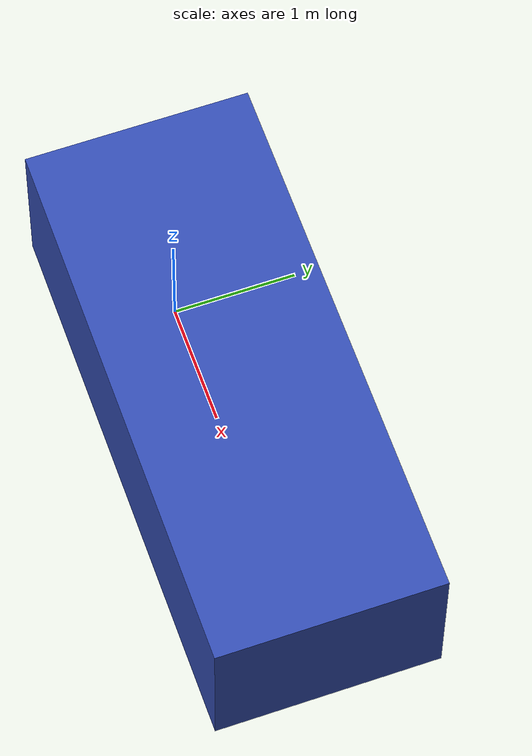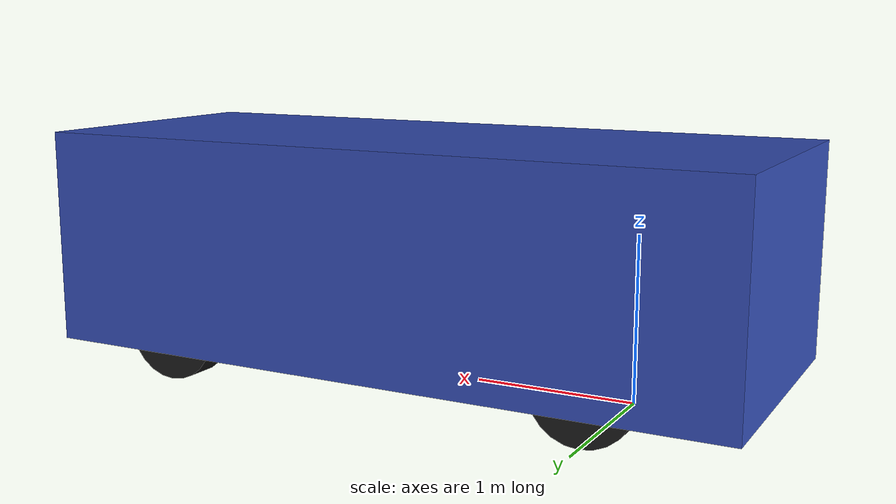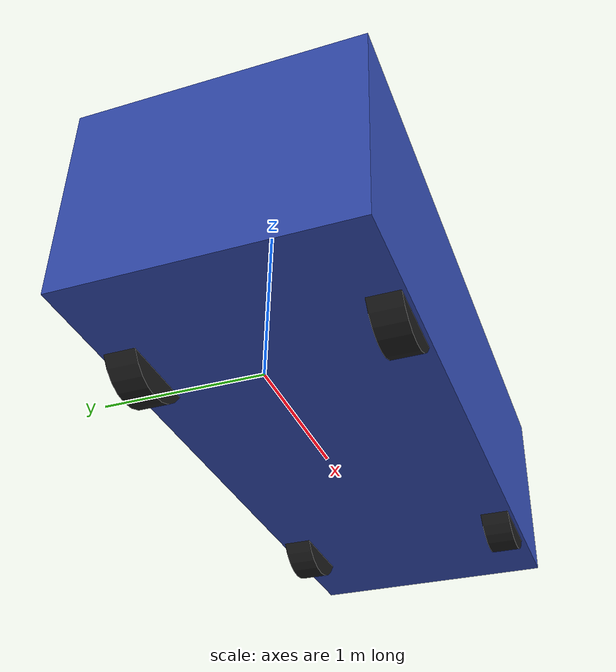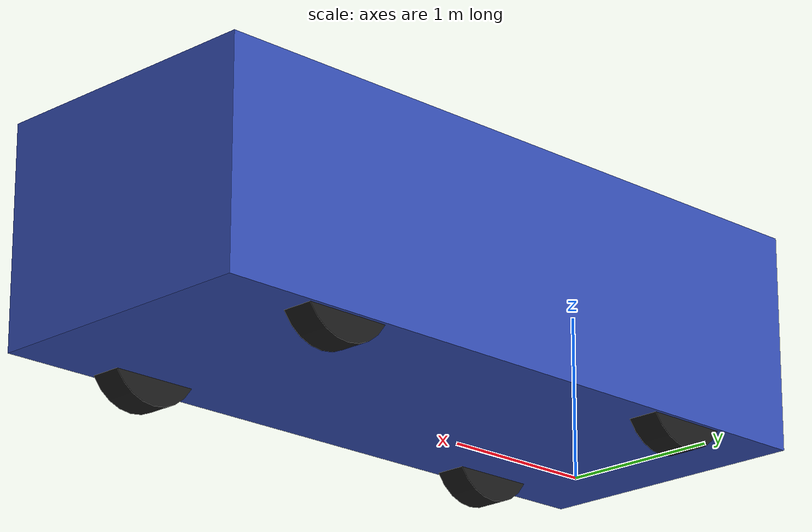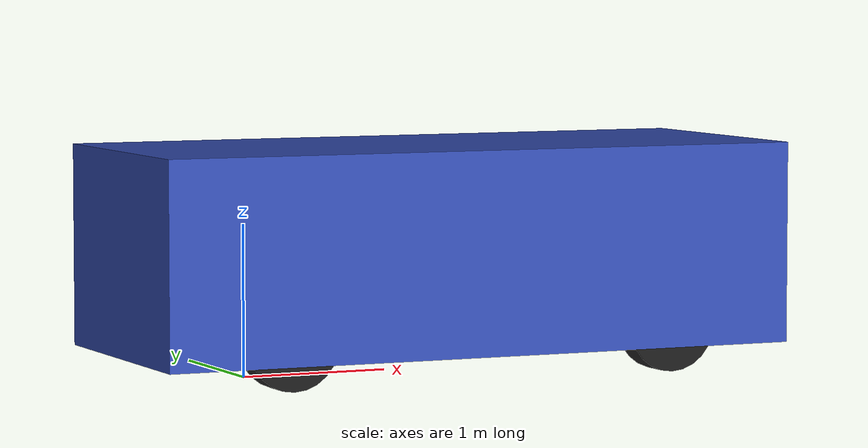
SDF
<?xml version="1.0" ?>
<sdf version="1.9">
  <model name="cross_car_a">
    <link name="cross_car_a_base">
      <gravity>false</gravity>
      <inertial>
        <pose>1.35 0 0.55 0 0 0</pose>
        <mass>1500</mass>
        <inertia><ixx>686.25</ixx><iyy>2701.25</iyy><izz>2825</izz>
          <ixy>0</ixy><ixz>0</ixz><iyz>0</iyz></inertia>
      </inertial>

      <!-- 车身。用**整车外廓宽度** width_m 而不是 chassis_width：
           自车模型那边取「轮距 − 轮宽」是为了调试时能看见前轮转向，
           而这里没有转向可看，用外廓宽度让点云的宽度与真值尺寸一致 ——
           感知的「尺寸误差」判据量的正是这个。 -->
      <visual name="body">
        <pose>1.35 0 0.83 0 0 0</pose>
        <geometry><box>
          <size>4.4 1.8 1.34</size>
        </box></geometry>
        <material><ambient>0.2 0.3 0.7 1</ambient><diffuse>0.2 0.3 0.7 1</diffuse></material>
      </visual>

      <visual name="wheel_rl">
        <pose>0 0.775 0.31 1.57079633 0 0</pose>
        <geometry><cylinder>
          <radius>0.31</radius><length>0.2</length>
        </cylinder></geometry>
        <material><ambient>0.1 0.1 0.1 1</ambient><diffuse>0.1 0.1 0.1 1</diffuse></material>
      </visual>
      <visual name="wheel_rr">
        <pose>0 -0.775 0.31 1.57079633 0 0</pose>
        <geometry><cylinder>
          <radius>0.31</radius><length>0.2</length>
        </cylinder></geometry>
        <material><ambient>0.1 0.1 0.1 1</ambient><diffuse>0.1 0.1 0.1 1</diffuse></material>
      </visual>
      <visual name="wheel_fl">
        <pose>2.7 0.775 0.31 1.57079633 0 0</pose>
        <geometry><cylinder>
          <radius>0.31</radius><length>0.2</length>
        </cylinder></geometry>
        <material><ambient>0.1 0.1 0.1 1</ambient><diffuse>0.1 0.1 0.1 1</diffuse></material>
      </visual>
      <visual name="wheel_fr">
        <pose>2.7 -0.775 0.31 1.57079633 0 0</pose>
        <geometry><cylinder>
          <radius>0.31</radius><length>0.2</length>
        </cylinder></geometry>
        <material><ambient>0.1 0.1 0.1 1</ambient><diffuse>0.1 0.1 0.1 1</diffuse></material>
      </visual>
    </link>

    <plugin filename="gz-sim-velocity-control-system"
            name="gz::sim::systems::VelocityControl">
      <topic>/model/cross_car_a/cmd_vel</topic>
    </plugin>

    <plugin filename="gz-sim-odometry-publisher-system"
            name="gz::sim::systems::OdometryPublisher">
      <odom_frame>map</odom_frame>
      <robot_base_frame>cross_car_a_base</robot_base_frame>
      <odom_topic>/model/cross_car_a/pose_gt</odom_topic>
      <tf_topic>/model/cross_car_a/pose_gt_tf_unused</tf_topic>
      <dimensions>3</dimensions>
      <odom_publish_frequency>50</odom_publish_frequency>
    </plugin>
  </model>
</sdf>
